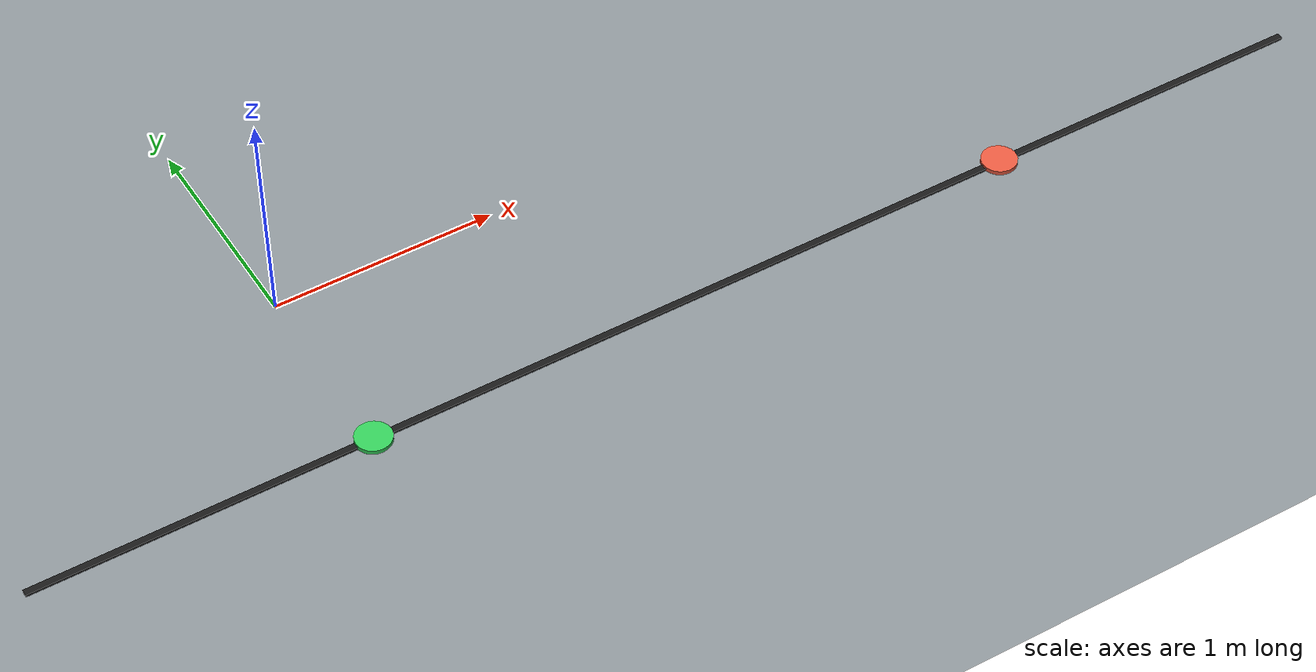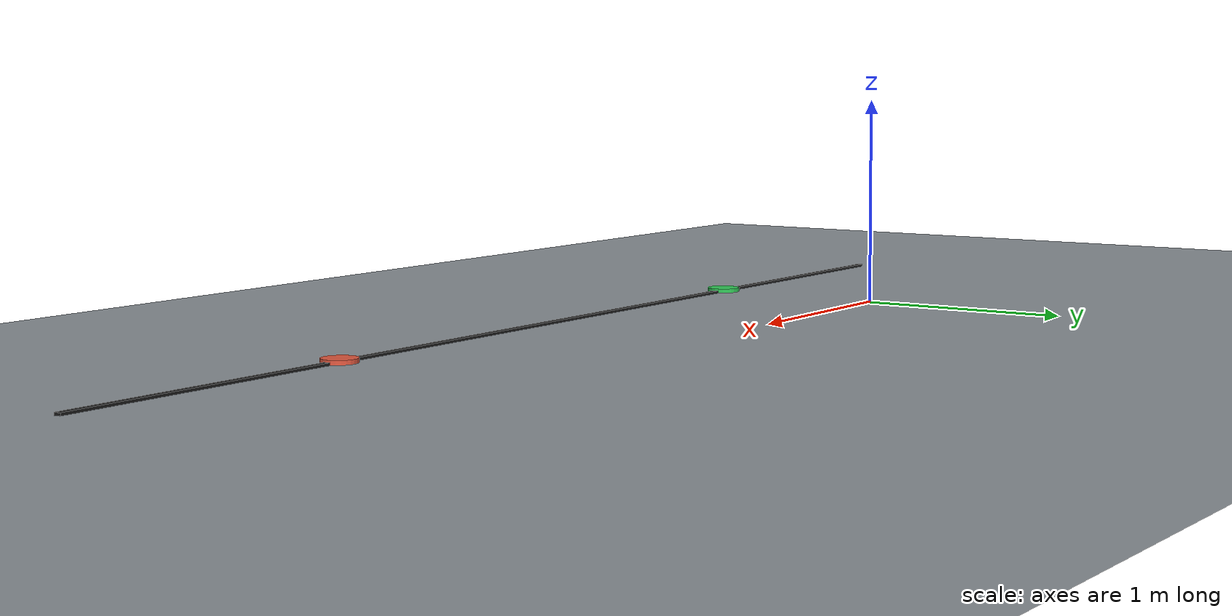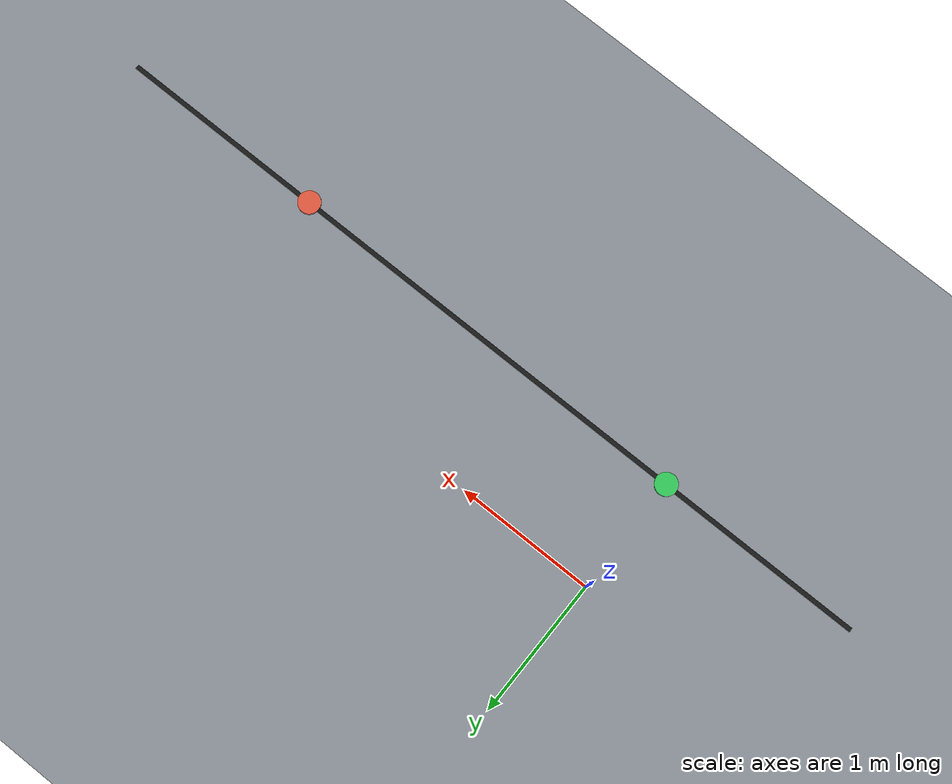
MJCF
<mujoco model="flat_showcase">
  <compiler angle="radian" autolimits="true"/>
  <option gravity="0 0 -9.81" timestep="0.002" integrator="RK4"/>

  <visual>
    <global offwidth="1920" offheight="1080"/>
    <headlight ambient="0.35 0.35 0.35" diffuse="0.7 0.7 0.7" specular="0.25 0.25 0.25"/>
    <quality shadowsize="4096"/>
    <map znear="0.01" zfar="120"/>
    <rgba haze="0.76 0.86 0.96 1"/>
  </visual>

  <asset>
    <material name="floor_mat" rgba="0.55 0.58 0.60 1" reflectance="0.04"/>
    <material name="reference_mat" rgba="0.10 0.10 0.10 1"/>
  </asset>

  <worldbody>
    <light name="key" pos="-3 -5 7" dir="0.3 0.5 -1"
           directional="true" diffuse="0.95 0.92 0.86" specular="0.25 0.25 0.25"/>
    <light name="fill" pos="4 3 4" dir="-0.6 -0.4 -1"
           directional="true" diffuse="0.35 0.40 0.45" specular="0.05 0.05 0.05"/>
    <geom name="floor" type="plane" size="40 40 0.1"
          material="floor_mat" conaffinity="1" condim="3"/>

    <geom name="x_reference" type="box" size="3.0 0.015 0.006"
          pos="1.5 -0.85 0.006" material="reference_mat"
          contype="0" conaffinity="0"/>
    <geom name="start_marker" type="cylinder" size="0.08 0.01"
          pos="0 -0.85 0.012" rgba="0.2 0.8 0.35 1"
          contype="0" conaffinity="0"/>
    <geom name="end_marker" type="cylinder" size="0.08 0.01"
          pos="3 -0.85 0.012" rgba="0.9 0.35 0.25 1"
          contype="0" conaffinity="0"/>
  </worldbody>
</mujoco>
